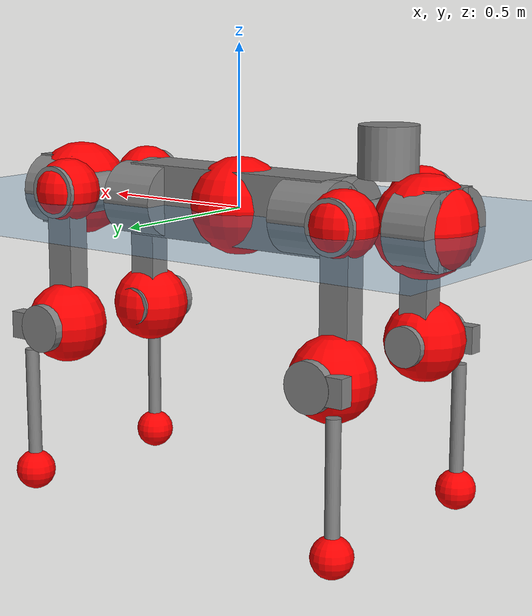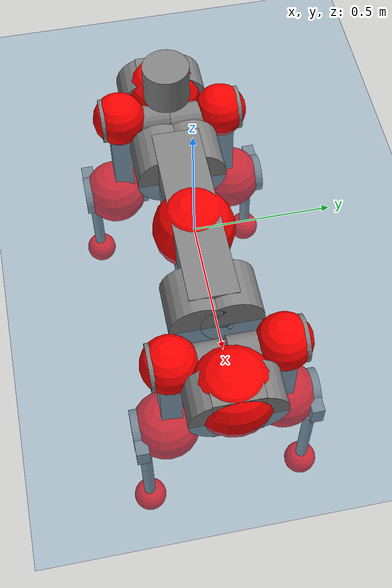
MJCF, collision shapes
<mujoco model="anymal_c">
  <compiler angle="radian" assetdir="assets" balanceinertia="true" inertiafromgeom="false"/>

  <option timestep="0.005" density="1.2" viscosity="2e-05"/>

  <size nkey="1"/>

  <visual>
    <quality shadowsize="8192"/>
    <map shadowclip="0.5"/>
  </visual>

  <default>
    <default class="/">
      <material specular="0" shininess="0.25"/>
      <geom contype="0" conaffinity="0" group="1" solref="-1000 -80"/>
      <site size="0.01 0.005 0.005" group="5"/>
      <general forcelimited="true" forcerange="-80 80" biastype="affine" gainprm="80" biasprm="0 -80 -2"/>
      <default class="anymal_c">
        <joint armature="0.01" damping="0.01" frictionloss="0.1"/>
        <default class="visual">
          <geom type="mesh" group="2"/>
          <default class="visual_zflip"/>
        </default>
        <default class="collision">
          <geom type="cylinder" group="3"/>
          <default class="foot">
            <geom size="0.03 0 0" type="sphere" condim="6" priority="1" friction="0.8 0.02 0.01" solimp="0.015 1 0.03"/>
          </default>
        </default>
      </default>
      <default class="reward_collision_sphere">
        <geom group="5" rgba="1 0 0 1"/>
      </default>
    </default>
  </default>

  <asset>
    <texture type="skybox" colorspace="auto" name="//unnamed_texture_0" builtin="gradient" rgb1="0.95 0.95 0.95" rgb2="0.95 0.95 0.95" width="100" height="600"/>
    <texture type="2d" colorspace="auto" name="texplane" builtin="checker" rgb1="0.345 0.575 0.748" rgb2="0.345 0.575 0.748" markrgb="1 1 1" width="512" height="512"/>
    <texture type="2d" colorspace="linear" name="base" file="base.png"/>
    <texture type="2d" colorspace="linear" name="top_shell" file="top_shell.png"/>
    <texture type="2d" colorspace="linear" name="bottom_shell" file="bottom_shell.png"/>
    <texture type="2d" colorspace="linear" name="remote" file="remote.png"/>
    <texture type="2d" colorspace="linear" name="hatch" file="hatch.png"/>
    <texture type="2d" colorspace="linear" name="handle" file="handle.png"/>
    <texture type="2d" colorspace="linear" name="face" file="face.png"/>
    <texture type="2d" colorspace="linear" name="battery" file="battery.png"/>
    <texture type="2d" colorspace="linear" name="lidar_cage" file="lidar_cage.png"/>
    <texture type="2d" colorspace="linear" name="depth_camera" file="depth_camera.png"/>
    <texture type="2d" colorspace="linear" name="wide_angle_camera" file="wide_angle_camera.png"/>
    <texture type="2d" colorspace="linear" name="lidar" file="lidar.png"/>
    <texture type="2d" colorspace="linear" name="drive" file="drive.png"/>
    <texture type="2d" colorspace="linear" name="hip_l" file="hip_l.png"/>
    <texture type="2d" colorspace="linear" name="shank_l" file="shank_l.png"/>
    <texture type="2d" colorspace="linear" name="foot" file="foot.png"/>
    <texture type="2d" colorspace="linear" name="thigh" file="thigh.png"/>
    <texture type="2d" colorspace="linear" name="shank_r" file="shank_r.png"/>
    <texture type="2d" colorspace="linear" name="hip_r" file="hip_r.png"/>
    <material name="MatPlane" class="/" texture="texplane" texuniform="true" texrepeat="2 2" specular="0.9" shininess="0.5"/>
    <material name="black_plastic" class="/" rgba="0.007 0.007 0.007 1"/>
    <material name="green" class="/" rgba="0.052 0.178 0.033 1"/>
    <material name="red" class="/" rgba="0.178 0.006 0.005 1"/>
    <material name="yellow" class="/" rgba="0.178 0.119 0.006 1"/>
    <material name="lwl" class="/" rgba="0.8 0.8 0.8 1"/>
    <material name="base" class="/" texture="base"/>
    <material name="top_shell" class="/" texture="top_shell"/>
    <material name="bottom_shell" class="/" texture="bottom_shell"/>
    <material name="hip_l" class="/" texture="hip_l"/>
    <material name="thigh" class="/" texture="thigh"/>
    <material name="shank_l" class="/" texture="shank_l"/>
    <material name="foot" class="/" texture="foot"/>
    <material name="hip_r" class="/" texture="hip_r"/>
    <material name="shank" class="/" texture="shank_r"/>
    <material name="hatch" class="/" texture="hatch"/>
    <material name="remote" class="/" texture="remote"/>
    <material name="handle" class="/" texture="handle"/>
    <material name="face" class="/" texture="face"/>
    <material name="depth_camera" class="/" texture="depth_camera"/>
    <material name="wide_angle_camera" class="/" texture="wide_angle_camera"/>
    <material name="battery" class="/" texture="battery"/>
    <material name="lidar_cage" class="/" texture="lidar_cage"/>
    <material name="lidar" class="/" texture="lidar"/>
    <material name="drive" class="/" texture="drive"/>
    <mesh name="base_0" class="/" file="base_0.obj"/>
    <mesh name="base_1" class="/" file="base_1.obj"/>
    <mesh name="base_2" class="/" file="base_2.obj"/>
    <mesh name="base_3" class="/" file="base_3.obj"/>
    <mesh name="base_4" class="/" file="base_4.obj"/>
    <mesh name="base_5" class="/" file="base_5.obj"/>
    <mesh name="top_shell" class="/" file="top_shell.obj"/>
    <mesh name="bottom_shell" class="/" file="bottom_shell.obj"/>
    <mesh name="remote" class="/" file="remote.obj"/>
    <mesh name="handle" class="/" file="handle.obj"/>
    <mesh name="face" class="/" file="face.obj"/>
    <mesh name="wide_angle_camera" class="/" file="wide_angle_camera.obj"/>
    <mesh name="depth_camera" class="/" file="depth_camera.obj"/>
    <mesh name="battery" class="/" file="battery.obj"/>
    <mesh name="lidar_cage" class="/" file="lidar_cage.obj"/>
    <mesh name="lidar" class="/" file="lidar.obj"/>
    <mesh name="drive" class="/" file="drive.obj"/>
    <mesh name="hip_l" class="/" file="hip_l.obj"/>
    <mesh name="thigh" class="/" file="thigh.obj"/>
    <mesh name="shank_l" class="/" file="shank_l.obj"/>
    <mesh name="foot" class="/" file="foot.obj"/>
    <mesh name="hip_r" class="/" file="hip_r.obj"/>
    <mesh name="hatch" class="/" file="hatch.obj"/>
    <mesh name="shank_r" class="/" file="shank_r.obj"/>
  </asset>

  <worldbody>
    <geom name="floor" class="/" size="100 100 0.125" type="plane" group="0" material="MatPlane"/>
    <light name="toplight_shadow" class="/" pos="0 0 5" dir="0.0990148 0.0990148 -0.990148" type="directional" ambient="0.04 0.04 0.04" diffuse="0.55 0.55 0.55" specular="0.12 0.12 0.12"/>
    <light name="toplight_fill" class="/" pos="0 0 5" dir="0.0990148 0.0990148 -0.990148" type="directional" castshadow="false" ambient="0.04 0.04 0.04" diffuse="0.3 0.3 0.3" specular="0.08 0.08 0.08"/>
    <body name="trunk" childclass="anymal_c" pos="0.000112047 -0.00104228 0.00802677" quat="1 -4.14897e-05 5.83134e-05 0.000104888">
      <inertial pos="0.0127964 0.0107739 0.071481" quat="0.507689 0.495719 0.509732 0.486505" mass="37.9399" diaginertia="3.50107 0.157043 1.51779"/>
      <joint name="//unnamed_joint_0" type="free" armature="0" damping="0" frictionloss="0"/>
      <geom name="//unnamed_geom_1" class="visual" material="green" mesh="base_0"/>
      <geom name="//unnamed_geom_2" class="visual" material="yellow" mesh="base_1"/>
      <geom name="//unnamed_geom_3" class="visual" material="red" mesh="base_2"/>
      <geom name="//unnamed_geom_4" class="visual" material="black_plastic" mesh="base_3"/>
      <geom name="//unnamed_geom_5" class="visual" material="lwl" mesh="base_4"/>
      <geom name="//unnamed_geom_6" class="visual" material="base" mesh="base_5"/>
      <geom name="trunk_1" class="collision" size="0.36479 0.0880528 0.113211" type="box"/>
      <geom name="trunk_2" class="collision" size="0.113211 0.0911975" pos="0.319455 0.0548197 0" quat="0.707107 0 0.707107 0"/>
      <geom name="trunk_3" class="collision" size="0.113211 0.0911975" pos="-0.319455 0.0548197 0" quat="0.707107 0 0.707107 0"/>
      <geom name="trunk_4" class="collision" size="0.113211 0.0911975" pos="0.319455 -0.0548197 0" quat="0.707107 0 0.707107 0"/>
      <geom name="trunk_5" class="collision" size="0.113211 0.0911975" pos="-0.319455 -0.0548197 0" quat="0.707107 0 0.707107 0"/>
      <geom name="//unnamed_geom_12" class="visual" material="top_shell" mesh="top_shell"/>
      <geom name="//unnamed_geom_13" class="visual" material="bottom_shell" mesh="bottom_shell"/>
      <geom name="//unnamed_geom_14" class="visual" material="remote" mesh="remote"/>
      <geom name="//unnamed_geom_15" class="visual" material="handle" mesh="handle"/>
      <geom name="//unnamed_geom_16" class="visual" pos="0.608801 0 0" quat="1 0 0 0" material="face" mesh="face"/>
      <geom name="trunk_6" class="collision" size="0.0691843 0.0880528 0.113211" pos="0.689583 0 0" type="box"/>
      <geom name="//unnamed_geom_18" class="collision" size="0.113211 0.0691843" pos="0.689583 0.0548197 0" quat="0.707107 0 0.707107 0"/>
      <geom name="//unnamed_geom_19" class="collision" size="0.113211 0.0691843" pos="0.689583 -0.0548197 0" quat="0.707107 0 0.707107 0"/>
      <geom name="//unnamed_geom_20" class="visual" pos="0.678055 0 -0.0448394" quat="0.965926 0 0.258819 0" material="depth_camera" mesh="depth_camera"/>
      <geom name="//unnamed_geom_21" class="visual" pos="0.753474 0 0.0227812" material="wide_angle_camera" mesh="wide_angle_camera"/>
      <geom name="//unnamed_geom_22" class="visual_zflip" pos="-0.608801 0 0" quat="0 0 0 1" material="face" mesh="face"/>
      <geom name="trunk_7" class="collision" size="0.0691843 0.0880528 0.113211" pos="-0.689583 0 0" quat="0 0 0 1" type="box"/>
      <geom name="//unnamed_geom_24" class="collision" size="0.113211 0.0691843" pos="-0.689583 -0.0548197 0" quat="0 -0.707107 0 0.707107"/>
      <geom name="//unnamed_geom_25" class="collision" size="0.113211 0.0691843" pos="-0.689583 0.0548197 0" quat="0 -0.707107 0 0.707107"/>
      <geom name="//unnamed_geom_26" class="visual" pos="-0.678055 0 -0.0448394" quat="0 -0.258819 0 0.965926" material="depth_camera" mesh="depth_camera"/>
      <geom name="//unnamed_geom_27" class="visual_zflip" pos="-0.753474 0 0.0227812" quat="0 0 0 1" material="wide_angle_camera" mesh="wide_angle_camera"/>
      <geom name="//unnamed_geom_28" class="visual" material="battery" mesh="battery"/>
      <geom name="//unnamed_geom_29" class="visual" pos="0 0.0508842 0.043805" quat="0.683013 -0.183013 0.183013 0.683013" material="depth_camera" mesh="depth_camera"/>
      <geom name="//unnamed_geom_30" class="visual" pos="0 -0.0508842 0.043805" quat="0.683013 0.183013 0.183013 -0.683013" material="depth_camera" mesh="depth_camera"/>
      <geom name="//unnamed_geom_31" class="visual" pos="-0.534629 0 0.111852" quat="1 0 0 0" material="lidar_cage" mesh="lidar_cage"/>
      <geom name="trunk_8" class="collision" size="0.0880528 0.0754738" pos="-0.534629 0 0.203159"/>
      <geom name="//unnamed_geom_33" class="visual" pos="-0.534629 -0.000269362 0.216399" quat="0.707107 0 0 -0.707107" material="lidar" mesh="lidar"/>
      <geom name="//unnamed_geom_34" class="visual" pos="0.440481 0.0817089 -1.27418e-08" quat="0.258819 0.965926 0 0" material="drive" mesh="drive"/>
      <geom name="//unnamed_geom_35" class="visual" pos="0.440481 -0.0817089 1.27418e-08" quat="0.258819 -0.965926 0 0" material="drive" mesh="drive"/>
      <geom name="//unnamed_geom_36" class="visual" pos="-0.440481 0.0817089 1.27418e-08" quat="0 0 0.965926 -0.258819" material="drive" mesh="drive"/>
      <geom name="//unnamed_geom_37" class="visual" pos="-0.440481 -0.0817089 -1.27418e-08" quat="0 0 -0.965926 -0.258819" material="drive" mesh="drive"/>
      <geom name="//unnamed_geom_38" class="visual" pos="0.170376 0 0.111091" quat="1 0 0 0" material="hatch" mesh="hatch"/>
      <geom name="//unnamed_geom_39" class="reward_collision_sphere" size="0.150948"/>
      <geom name="//unnamed_geom_40" class="reward_collision_sphere" size="0.150948" pos="0.660942 0 0"/>
      <geom name="//unnamed_geom_41" class="reward_collision_sphere" size="0.150948" pos="-0.660942 0 0"/>
      <site name="imu" pos="0.429721 0.0100739 0.0170245" size="0.012579"/>
      <camera name="track" pos="0 -1.56628 0" quat="0.707107 0.707107 0 0" mode="trackcom"/>
      <camera name="ego_camera" pos="0.660942 0 -0.0608717" quat="-0.5 -0.5 0.5 0.5"/>
      <body name="LF_HIP" pos="0.439889 0.0854605 -0.00118569" quat="0.260912 0.965361 -0.000222436 0.00172512">
        <inertial pos="0.07231 -0.00634653 -0.0132892" quat="-0.100363 0.725322 -0.130065 0.66852" mass="6.23052" diaginertia="0.0452641 0.00140479 0.0253702"/>
        <joint name="LF_HAA" pos="0 0 0" axis="0.999044 -0.0420814 -0.0118653" stiffness="0.0141718" range="-0.729534 0.363023" armature="0.00510081" damping="0.0650053" frictionloss="0.134463"/>
        <geom name="//unnamed_geom_42" class="visual" pos="0 -0.000749545 0.000123112" quat="0.258819 -0.965926 0 0" material="hip_l" mesh="hip_l"/>
        <geom name="//unnamed_geom_43" class="visual" pos="0.0879787 -0.0978401 -0.0619515" quat="0.183013 -0.683013 0.683013 0.183013" material="drive" mesh="drive"/>
        <geom name="//unnamed_geom_44" class="collision" size="0.0628948 0.0880528" pos="0.0879787 -0.00936619 -0.010508" quat="-0.353553 -0.612372 0.612372 -0.353553"/>
        <body name="LF_THIGH" pos="0.0884404 -0.0569786 -0.0625611" quat="0.182765 -0.682937 0.683193 0.18287">
          <inertial pos="0.0406328 -0.000722811 -0.385106" quat="0.994667 -0.00183985 -0.0716902 0.0741279" mass="5.61312" diaginertia="0.237321 0.00884677 0.0349228"/>
          <joint name="LF_HFE" pos="0 0 0" axis="0.997999 -0.040791 0.0483064" range="-3.09276 3.11161" armature="0.0119132" damping="0.0230944" frictionloss="0.192969"/>
          <geom name="//unnamed_geom_45" class="visual" pos="0.0136412 2.14953e-05 0" quat="0.707107 0 0 -0.707107" material="thigh" mesh="thigh"/>
          <geom name="//unnamed_geom_46" class="collision" size="0.0817633 0.0503159" pos="0.0587504 0 0" quat="0.5 0.5 -0.5 -0.5"/>
          <geom name="//unnamed_geom_47" class="collision" size="0.0471711 0.0377369 0.177758" pos="0.0440628 0 -0.21505" quat="0.707107 0 0 -0.707107" type="box"/>
          <geom name="//unnamed_geom_48" class="visual" pos="0.147317 0 -0.433711" quat="1 0 0 0" material="drive" mesh="drive"/>
          <geom name="//unnamed_geom_49" class="collision" size="0.0628948 0.0880528" pos="0.0445034 0 -0.433711" quat="0.707107 0 0.707107 0"/>
          <geom name="//unnamed_geom_50" class="reward_collision_sphere" size="0.100632" pos="0.036719 0 0"/>
          <body name="LF_SHANK" pos="0.137707 0.009949 -0.420877" quat="0.999989 6.01576e-05 0.00414081 -0.00236154">
            <inertial pos="0.0102515 -0.0476989 -0.120337" quat="0.992801 -0.117086 -0.0129875 -0.021626" mass="1.24681" diaginertia="0.0745196 0.0027324 0.0100778"/>
            <joint name="LF_KFE" pos="0 0 0" axis="0.999793 0.0156202 -0.0130703" stiffness="0.00147344" range="-2.98818 3.0539" armature="0.00923091" damping="0.055902" frictionloss="0.0803383"/>
            <geom name="//unnamed_geom_51" class="visual" pos="0.00444808 0.0237174 0" quat="0.707107 0 0 -0.707107" material="shank_l" mesh="shank_l"/>
            <geom name="LF_kfe_act" class="collision" size="0.0754738 0.0251579" pos="0.0293752 0 0" quat="0.5 0.5 -0.5 -0.5"/>
            <geom name="//unnamed_geom_53" class="collision" size="0.0723278 0.042454 0.0239" pos="0.0293752 -0.0450297 0" quat="0.5 0.5 -0.5 -0.5" type="box"/>
            <geom name="//unnamed_geom_54" class="visual" pos="0.0191662 -0.0612339 -0.51432" quat="0.382683 0 0 -0.92388" material="foot" mesh="foot"/>
            <geom name="LF_calf" class="collision" size="0.0220132 0.17768" pos="0.0191673 -0.0688771 -0.25716" quat="0.707107 0 0 -0.707107"/>
            <geom name="LF_foot" class="foot" size="0.0401642" pos="0.0191673 -0.0688771 -0.48008" quat="0.707107 0 0 -0.707107"/>
            <geom name="//unnamed_geom_57" class="reward_collision_sphere" size="0.12579" pos="-0.073438 0 0"/>
            <geom name="//unnamed_geom_58" class="reward_collision_sphere" size="0.0628948" pos="0.0191673 -0.0688771 -0.48008"/>
            <site name="LF_foot" class="foot" pos="0.0191673 -0.0688771 -0.48008" quat="0.707107 0 0 -0.707107" size="0.012579"/>
          </body>
        </body>
      </body>
      <body name="RF_HIP" pos="0.447932 -0.0825436 0.00109732" quat="0.25883 -0.965923 -7.81993e-05 3.22123e-05">
        <inertial pos="0.0728398 0.0121637 -0.0123174" quat="0.129808 0.680071 0.123786 0.710866" mass="5.1936" diaginertia="0.0387457 0.00121374 0.024652"/>
        <joint name="RF_HAA" pos="0 0 0" axis="0.999802 -0.00669414 -0.0187608" stiffness="0.0166057" range="-0.267637 0.69819" armature="0.0188185" damping="0.00361257" frictionloss="0.193783"/>
        <geom name="//unnamed_geom_59" class="visual" pos="0 0.000749539 0.000123112" quat="0.258819 0.965926 0 0" material="hip_r" mesh="hip_r"/>
        <geom name="//unnamed_geom_60" class="visual" pos="0.0879787 0.0978401 -0.0619515" quat="0.183013 0.683013 0.683013 -0.183013" material="drive" mesh="drive"/>
        <geom name="//unnamed_geom_61" class="collision" size="0.0628948 0.0880528" pos="0.0879787 0.00936619 -0.010508" quat="-0.353553 0.612372 0.612372 0.353553"/>
        <body name="RF_THIGH" pos="0.0929557 0.0452994 -0.0581558" quat="0.182934 0.682561 0.683587 -0.18263">
          <inertial pos="0.044902 -0.000823338 -0.374157" quat="0.997311 -0.00575971 -0.0354762 0.0638714" mass="7.79553" diaginertia="0.230022 0.00890111 0.03547"/>
          <joint name="RF_HFE" pos="0 0 0" axis="0.998977 -0.0251594 -0.0375677" stiffness="0.00891007" range="-3.39351 2.98777" armature="0.0120319" damping="0.0535658" frictionloss="0.0385309"/>
          <geom name="//unnamed_geom_62" class="visual" pos="0.0136412 2.14953e-05 0" quat="0.707107 0 0 -0.707107" material="thigh" mesh="thigh"/>
          <geom name="//unnamed_geom_63" class="collision" size="0.0817633 0.0503159" pos="0.0587504 0 0" quat="0.5 0.5 0.5 0.5"/>
          <geom name="//unnamed_geom_64" class="collision" size="0.0471711 0.0377369 0.177758" pos="0.0440628 0 -0.21505" quat="0.707107 0 0 0.707107" type="box"/>
          <geom name="//unnamed_geom_65" class="visual" pos="0.147317 0 -0.433711" quat="1 0 0 0" material="drive" mesh="drive"/>
          <geom name="//unnamed_geom_66" class="collision" size="0.0628948 0.0880528" pos="0.0445034 0 -0.433711" quat="0.707107 0 0.707107 0"/>
          <geom name="//unnamed_geom_67" class="reward_collision_sphere" size="0.100632" pos="0.036719 0 0"/>
          <body name="RF_SHANK" pos="0.136689 0.0116518 -0.438134" quat="1 3.58141e-05 0.000186411 -5.95956e-05">
            <inertial pos="0.00659858 0.0472699 -0.134267" quat="0.988865 0.141719 -0.0057574 0.0450462" mass="1.173" diaginertia="0.0795858 0.00301269 0.00912368"/>
            <joint name="RF_KFE" pos="0 0 0" axis="0.999996 0.00132223 0.00261168" range="-3.00496 2.99402" armature="0.0146668" damping="0.00893252" frictionloss="0.202732"/>
            <geom name="//unnamed_geom_68" class="visual" pos="0.00444806 -0.0237174 0" quat="0.707107 0 0 0.707107" material="shank" mesh="shank_r"/>
            <geom name="RF_kfe_act" class="collision" size="0.0754738 0.0251579" pos="0.0293752 0 0" quat="0.5 0.5 0.5 0.5"/>
            <geom name="//unnamed_geom_70" class="collision" size="0.0723278 0.042454 0.0239" pos="0.0293752 0.0450297 0" quat="0.5 0.5 0.5 0.5" type="box"/>
            <geom name="//unnamed_geom_71" class="visual" pos="0.0191684 0.0612339 -0.51432" quat="0.382683 0 0 0.92388" material="foot" mesh="foot"/>
            <geom name="RF_calf" class="collision" size="0.0220132 0.17768" pos="0.0191673 0.0688771 -0.25716" quat="0.707107 0 0 0.707107"/>
            <geom name="RF_foot" class="foot" size="0.057459" pos="0.0191673 0.0688771 -0.48008" quat="0.707107 0 0 0.707107"/>
            <geom name="//unnamed_geom_74" class="reward_collision_sphere" size="0.12579" pos="-0.073438 0 0"/>
            <geom name="//unnamed_geom_75" class="reward_collision_sphere" size="0.0628948" pos="0.0191673 0.0688771 -0.48008"/>
            <site name="RF_foot" class="foot" pos="0.0191673 0.0688771 -0.48008" quat="0.707107 0 0 0.707107" size="0.012579"/>
          </body>
        </body>
      </body>
      <body name="LH_HIP" pos="-0.427888 0.0766932 -0.000911356" quat="0.00111724 0.000226652 0.966142 -0.258009">
        <inertial pos="0.0782568 0.000788534 -0.0118788" quat="0.135596 0.655604 0.117436 0.733489" mass="5.55599" diaginertia="0.0472396 0.0013807 0.0343027"/>
        <joint name="LH_HAA" pos="0 0 0" axis="0.999816 0.00804938 0.017401" stiffness="0.0180332" range="-0.572776 0.997473" armature="0.0200245" damping="0.0413516" frictionloss="0.119984"/>
        <geom name="//unnamed_geom_76" class="visual" pos="0 0.000749539 0.000123112" quat="-0.258819 -0.965926 0 0" material="hip_r" mesh="hip_r"/>
        <geom name="//unnamed_geom_77" class="visual" pos="0.0879787 0.0978401 -0.0619515" quat="0.183013 0.683013 0.683013 -0.183013" material="drive" mesh="drive"/>
        <geom name="//unnamed_geom_78" class="collision" size="0.0628948 0.0880528" pos="0.0879787 0.00936619 -0.010508" quat="-0.353553 0.612372 0.612372 0.353553"/>
        <body name="LH_THIGH" pos="0.0953042 0.0704294 -0.0614589" quat="0.182627 0.682956 0.683084 -0.183341">
          <inertial pos="0.045311 -0.00954817 -0.372879" quat="0.992761 -0.00371609 -0.0807563 0.0888245" mass="6.01718" diaginertia="0.203739 0.0094851 0.0325362"/>
          <joint name="LH_HFE" pos="0 0 0" axis="0.99878 0.0303094 0.0389911" range="-3.1217 3.14195" armature="0.0162047" damping="0.0349648" frictionloss="0.101721"/>
          <geom name="//unnamed_geom_79" class="visual" pos="0.0136412 2.14953e-05 0" quat="0.707107 0 0 -0.707107" material="thigh" mesh="thigh"/>
          <geom name="//unnamed_geom_80" class="collision" size="0.0817633 0.0503159" pos="0.0587504 0 0" quat="0.5 0.5 -0.5 -0.5"/>
          <geom name="//unnamed_geom_81" class="collision" size="0.0471711 0.0377369 0.177758" pos="0.0440628 0 -0.21505" quat="0.707107 0 0 -0.707107" type="box"/>
          <geom name="//unnamed_geom_82" class="visual" pos="0.147317 0 -0.433711" quat="1 0 0 0" material="drive" mesh="drive"/>
          <geom name="//unnamed_geom_83" class="collision" size="0.0628948 0.0880528" pos="0.0445034 0 -0.433711" quat="0.707107 0 0.707107 0"/>
          <geom name="//unnamed_geom_84" class="reward_collision_sphere" size="0.100632" pos="0.036719 0 0"/>
          <body name="LH_SHANK" pos="0.15486 0.00065346 -0.429558" quat="0.999998 0.00133741 -0.000986087 0.00146624">
            <inertial pos="0.00807887 0.0478221 -0.123515" quat="0.988797 0.121669 0.0503931 0.0702707" mass="1.18946" diaginertia="0.0711372 0.0027542 0.0108002"/>
            <joint name="LH_KFE" pos="0 0 0" axis="0.999041 -0.00407814 -0.0436002" range="-3.19425 3.13674" armature="0.0177782" damping="0.00882706" frictionloss="0.0785609"/>
            <geom name="//unnamed_geom_85" class="visual" pos="0.00444806 -0.0237174 0" quat="-0.707107 0 0 -0.707107" material="shank" mesh="shank_r"/>
            <geom name="LH_kfe_act" class="collision" size="0.0754738 0.0251579" pos="0.0293752 0 0" quat="0.5 0.5 -0.5 -0.5"/>
            <geom name="//unnamed_geom_87" class="collision" size="0.0723278 0.042454 0.0239" pos="0.0293752 0.0450297 0" quat="0.5 0.5 -0.5 -0.5" type="box"/>
            <geom name="//unnamed_geom_88" class="visual" pos="0.0191684 0.0612339 -0.51432" quat="-0.382683 0 0 -0.92388" material="foot" mesh="foot"/>
            <geom name="LH_calf" class="collision" size="0.0220132 0.17768" pos="0.0191673 0.0688771 -0.25716" quat="0.707107 0 0 -0.707107"/>
            <geom name="LH_foot" class="foot" size="0.0168734" pos="0.0191673 0.0688771 -0.48008" quat="0.707107 0 0 -0.707107"/>
            <geom name="//unnamed_geom_91" class="reward_collision_sphere" size="0.12579" pos="-0.073438 0 0"/>
            <geom name="//unnamed_geom_92" class="reward_collision_sphere" size="0.0628948" pos="0.0191673 0.0688771 -0.48008"/>
            <site name="LH_foot" class="foot" pos="0.0191673 0.0688771 -0.48008" quat="0.707107 0 0 -0.707107" size="0.012579"/>
          </body>
        </body>
      </body>
      <body name="RH_HIP" pos="-0.440074 -0.0701665 0.00506538" quat="-0.00413906 -0.000671176 -0.965485 -0.260425">
        <inertial pos="0.0946774 -0.013322 -0.0229545" quat="-0.115706 0.706728 -0.136577 0.684467" mass="5.94101" diaginertia="0.0436458 0.00154489 0.0331823"/>
        <joint name="RH_HAA" pos="0 0 0" axis="0.999999 0.000206267 -0.00109822" stiffness="0.0273206" range="-0.520868 0.23818" armature="0.0123895" damping="0.0453935" frictionloss="0.134235"/>
        <geom name="//unnamed_geom_93" class="visual" pos="0 -0.000749545 0.000123112" quat="-0.258819 0.965926 0 0" material="hip_l" mesh="hip_l"/>
        <geom name="//unnamed_geom_94" class="visual" pos="0.0879787 -0.0978401 -0.0619515" quat="-0.183013 0.683013 -0.683013 -0.183013" material="drive" mesh="drive"/>
        <geom name="//unnamed_geom_95" class="collision" size="0.0628948 0.0880528" pos="0.0879787 -0.00936619 -0.010508" quat="0.353553 0.612372 -0.612372 0.353553"/>
        <body name="RH_THIGH" pos="0.0887424 -0.0513096 -0.07517" quat="-0.183055 0.682891 -0.683051 -0.18328">
          <inertial pos="0.0370344 0.00198281 -0.37525" quat="0.993229 -0.00482814 -0.0809609 0.0831769" mass="8.24411" diaginertia="0.272226 0.0104163 0.0389202"/>
          <joint name="RH_HFE" pos="0 0 0" axis="0.998841 -0.0479123 -0.00448405" stiffness="0.00829211" range="-3.12884 3.18164" armature="0.0154" damping="0.0250781" frictionloss="0.134373"/>
          <geom name="//unnamed_geom_96" class="visual" pos="0.0136412 2.14953e-05 0" quat="0.707107 0 0 -0.707107" material="thigh" mesh="thigh"/>
          <geom name="//unnamed_geom_97" class="collision" size="0.0817633 0.0503159" pos="0.0587504 0 0" quat="0.5 0.5 0.5 0.5"/>
          <geom name="//unnamed_geom_98" class="collision" size="0.0471711 0.0377369 0.177758" pos="0.0440628 0 -0.21505" quat="0.707107 0 0 0.707107" type="box"/>
          <geom name="//unnamed_geom_99" class="visual" pos="0.147317 0 -0.433711" quat="1 0 0 0" material="drive" mesh="drive"/>
          <geom name="//unnamed_geom_100" class="collision" size="0.0628948 0.0880528" pos="0.0445034 0 -0.433711" quat="0.707107 0 0.707107 0"/>
          <geom name="//unnamed_geom_101" class="reward_collision_sphere" size="0.100632" pos="0.036719 0 0"/>
          <body name="RH_SHANK" pos="0.15836 0.00191147 -0.434902" quat="0.999996 -0.00200801 -0.000260882 0.0019306">
            <inertial pos="0.0123873 -0.048002 -0.12216" quat="0.99109 -0.116258 0.0433451 -0.0484351" mass="1.17025" diaginertia="0.0753019 0.00239805 0.0092805"/>
            <joint name="RH_KFE" pos="0 0 0" axis="0.999776 -0.00992281 -0.0186953" range="-3.1044 3.20577" armature="0.0203788" damping="0" frictionloss="0.12657"/>
            <geom name="//unnamed_geom_102" class="visual" pos="0.00444808 0.0237174 0" quat="0.707107 0 0 -0.707107" material="shank_l" mesh="shank_l"/>
            <geom name="RH_kfe_act" class="collision" size="0.0754738 0.0251579" pos="0.0293752 0 0" quat="0.5 0.5 0.5 0.5"/>
            <geom name="//unnamed_geom_104" class="collision" size="0.0723278 0.042454 0.0239" pos="0.0293752 -0.0450297 0" quat="0.5 0.5 0.5 0.5" type="box"/>
            <geom name="//unnamed_geom_105" class="visual" pos="0.0191662 -0.0612339 -0.51432" quat="0.382683 0 0 -0.92388" material="foot" mesh="foot"/>
            <geom name="RH_calf" class="collision" size="0.0220132 0.17768" pos="0.0191673 -0.0688771 -0.25716" quat="0.707107 0 0 0.707107"/>
            <geom name="RH_foot" class="foot" size="0.0485213" pos="0.0191673 -0.0688771 -0.48008" quat="0.707107 0 0 0.707107"/>
            <geom name="//unnamed_geom_108" class="reward_collision_sphere" size="0.12579" pos="-0.073438 0 0"/>
            <geom name="//unnamed_geom_109" class="reward_collision_sphere" size="0.0628948" pos="0.0191673 -0.0688771 -0.48008"/>
            <site name="RH_foot" class="foot" pos="0.0191673 -0.0688771 -0.48008" quat="0.707107 0 0 0.707107" size="0.012579"/>
          </body>
        </body>
      </body>
    </body>
  </worldbody>

  <contact>
    <pair class="/" geom1="floor" geom2="LF_foot" name="//unnamed_contact_0"/>
    <pair class="/" geom1="floor" geom2="RF_foot" name="//unnamed_contact_1"/>
    <pair class="/" geom1="floor" geom2="LH_foot" name="//unnamed_contact_2"/>
    <pair class="/" geom1="floor" geom2="RH_foot" name="//unnamed_contact_3"/>
  </contact>

  <actuator>
    <general name="LF_HAA" class="/" joint="LF_HAA" forcerange="-105.033 105.033" gainprm="70.2181" biasprm="0 -70.2181 -2.81317"/>
    <general name="LF_HFE" class="/" joint="LF_HFE" forcerange="-125.14 125.14" gainprm="70.2181" biasprm="0 -70.2181 -2.81317"/>
    <general name="LF_KFE" class="/" joint="LF_KFE" forcerange="-110.887 110.887" gainprm="70.2181" biasprm="0 -70.2181 -2.81317"/>
    <general name="RF_HAA" class="/" joint="RF_HAA" forcerange="-127.38 127.38" gainprm="70.2181" biasprm="0 -70.2181 -2.81317"/>
    <general name="RF_HFE" class="/" joint="RF_HFE" forcerange="-81.3169 81.3169" gainprm="70.2181" biasprm="0 -70.2181 -2.81317"/>
    <general name="RF_KFE" class="/" joint="RF_KFE" forcerange="-140.196 140.196" gainprm="70.2181" biasprm="0 -70.2181 -2.81317"/>
    <general name="LH_HAA" class="/" joint="LH_HAA" forcerange="-103 103" gainprm="70.2181" biasprm="0 -70.2181 -2.81317"/>
    <general name="LH_HFE" class="/" joint="LH_HFE" forcerange="-141.032 141.032" gainprm="70.2181" biasprm="0 -70.2181 -2.81317"/>
    <general name="LH_KFE" class="/" joint="LH_KFE" forcerange="-109.78 109.78" gainprm="70.2181" biasprm="0 -70.2181 -2.81317"/>
    <general name="RH_HAA" class="/" joint="RH_HAA" forcerange="-113.9 113.9" gainprm="70.2181" biasprm="0 -70.2181 -2.81317"/>
    <general name="RH_HFE" class="/" joint="RH_HFE" forcerange="-146.346 146.346" gainprm="70.2181" biasprm="0 -70.2181 -2.81317"/>
    <general name="RH_KFE" class="/" joint="RH_KFE" forcerange="-63.4988 63.4988" gainprm="70.2181" biasprm="0 -70.2181 -2.81317"/>
  </actuator>

  <sensor>
    <gyro site="imu" name="imu_angular_velocity"/>
    <velocimeter site="imu" name="imu_linear_velocity"/>
    <framelinvel objtype="site" objname="LF_foot" name="LF_foot_global_linear_velocity"/>
    <framelinvel objtype="site" objname="RF_foot" name="RF_foot_global_linear_velocity"/>
    <framelinvel objtype="site" objname="LH_foot" name="LH_foot_global_linear_velocity"/>
    <framelinvel objtype="site" objname="RH_foot" name="RH_foot_global_linear_velocity"/>
  </sensor>

  <keyframe>
    <key name="home" qpos="0 0 0.55 1 0 0 0 0 0.4 -0.8 0 -0.4 0.8 0 -0.4 0.8 0 0.4 -0.8"/>
  </keyframe>
</mujoco>
